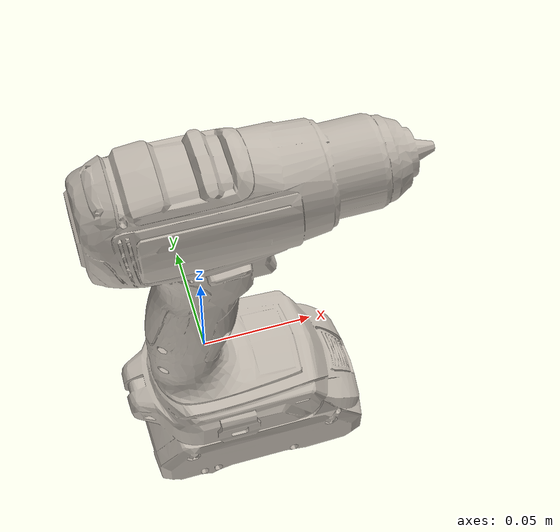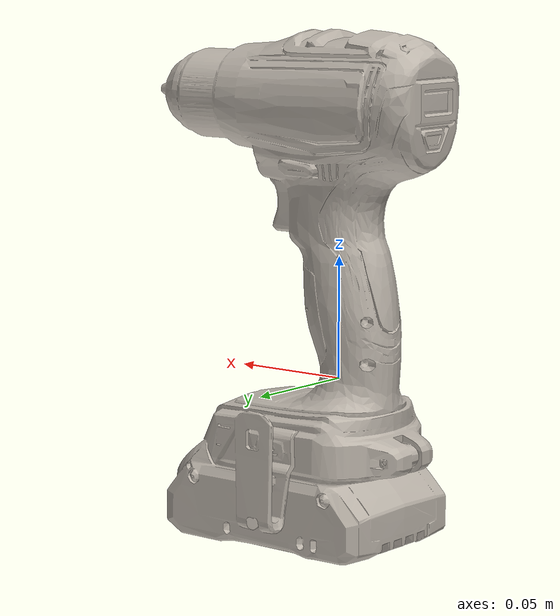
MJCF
<mujoco model="material">
  <compiler angle="radian" />
  <asset>
    <texture name="material_base_color" type="2d" file="/mnt/d/work/mujoco-study/bodex_mjx/assets/drill/meshes/texture_pbr_20250901.png" />
    <material name="material_mat" texture="material_base_color" texuniform="true" />
    <mesh name="material_visual" file="/mnt/d/work/mujoco-study/bodex_mjx/assets/drill/meshes/material_visual.obj" />
    <mesh name="material_collision" file="/mnt/d/work/mujoco-study/bodex_mjx/assets/drill/meshes/material_collision.stl" />
  </asset>
  <worldbody>
    <body name="grasp_object" pos="0.0 0.0 0.04750458151102066" quat="1.0 0.0 0.0 0.0">
      <inertial pos="0.012025 -0.001308 -0.023861" mass="0.643895" fullinertia="3.457876e-03 3.839461e-03 6.641697e-04 1.766874e-06 1.459869e-04 -1.455879e-06" />
      <geom name="visual" type="mesh" mesh="material_visual" contype="0" conaffinity="0" group="2" material="material_mat" />
      <geom name="grasp_object_geom" type="mesh" mesh="material_collision" contype="1" conaffinity="1" group="3" />
    <site name="grasp_anchor" pos="0.0 0.0 0.0" size="0.004" rgba="1 0.2 0.2 1" /></body>
  </worldbody>
</mujoco>
